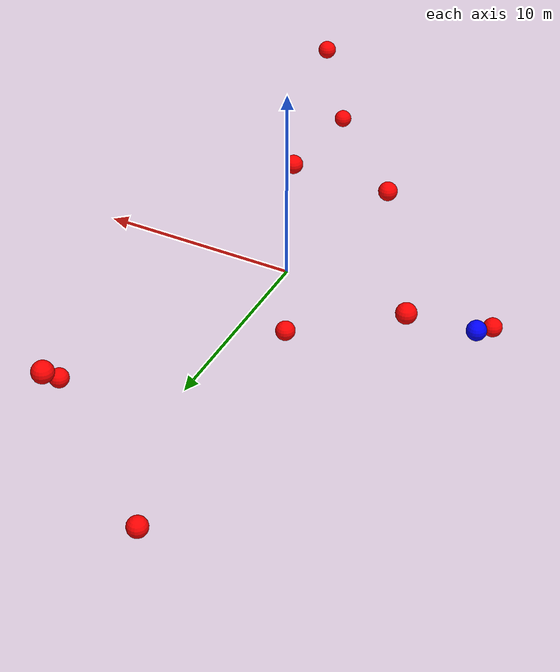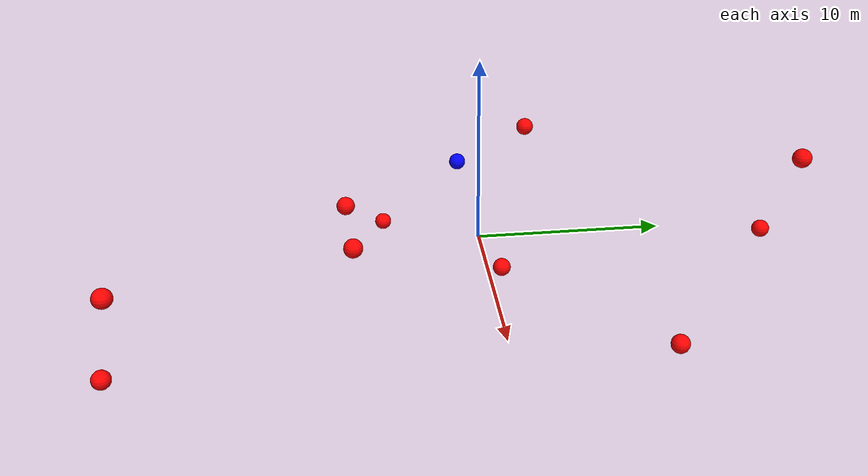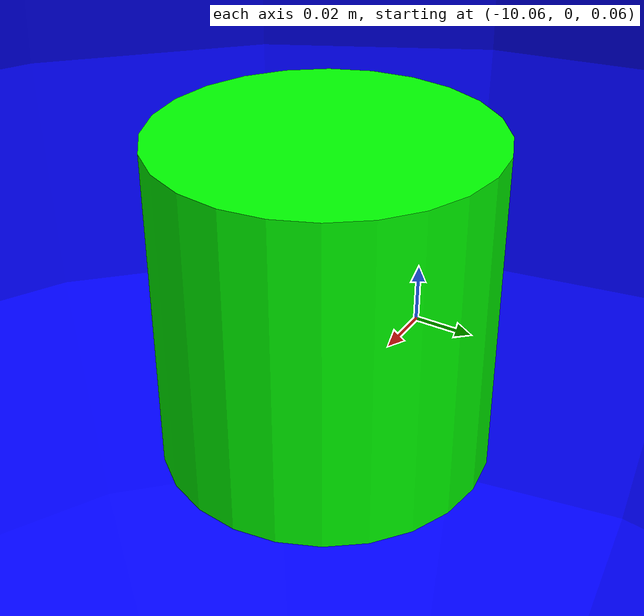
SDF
<?xml version="1.0" ?>
<sdf version="1.8">
    <world name="3d_world">
        <physics name="1ms" type="ode">
            <max_step_size>0.001</max_step_size>
            <real_time_factor>1.0</real_time_factor>
            <real_time_update_rate>1000.0</real_time_update_rate>
        </physics>
        <gravity>0 0 0</gravity>

        <plugin
            filename="gz-sim-physics-system"
            name="gz::sim::v8::systems::Physics">
        </plugin>
        <plugin
            filename="libignition-gazebo-user-commands-system.so"
            name="ignition::gazebo::systems::UserCommands">
        </plugin>
        <plugin
            filename="gz-sim-scene-broadcaster-system"
            name="gz::sim::systems::SceneBroadcaster">
        </plugin>
        <plugin
            filename="gz-sim-sensors-system"
            name="gz::sim::systems::Sensors">
            <render_engine>ogre2</render_engine>
        </plugin>

        <light type="directional" name="sun">
            <cast_shadows>true</cast_shadows>
            <pose>0 0 10 0 0 0</pose>
            <diffuse>0.8 0.8 0.8 1</diffuse>
            <specular>0.2 0.2 0.2 1</specular>
            <attenuation>
                <range>1000</range>
                <constant>0.9</constant>
                <linear>0.01</linear>
                <quadratic>0.001</quadratic>
            </attenuation>
            <direction>-0.5 0.1 -0.9</direction>
        </light>

        <!-- AGENTE -->
        <model name='agente' canonical_link='chassis'>
            <pose relative_to='world'>-10.0 0 0.0 0 0 0</pose>
            <link name='chassis'>
                <pose relative_to='__model__'>0.0 0 0.0 0 0 0</pose>
                <inertial>
                    <mass>1.14395</mass>
                    <inertia>
                        <ixx>0.095329</ixx>
                        <ixy>0</ixy>
                        <ixz>0</ixz>
                        <iyy>0.381317</iyy>
                        <iyz>0</iyz>
                        <izz>0.476646</izz>
                    </inertia>
                </inertial>
                <visual name='visual'>
                    <geometry>
                        <sphere>
                            <radius>0.5</radius>
                        </sphere>
                    </geometry>
                    <material>
                        <ambient>0.0 0.0 1.0 1</ambient>
                        <diffuse>0.0 0.0 1.0 1</diffuse>
                        <specular>0.0 0.0 1.0 1</specular>
                    </material>
                </visual>
                <collision name='collision'>
                    <geometry>
                        <sphere>
                            <radius>0.5</radius>
                        </sphere>
                    </geometry>
                </collision>
                <enable_gravity>false</enable_gravity>
            </link>

            <link name='lidar_link'>
                <pose relative_to='chassis'>0.0 0 0.1 0 0 0</pose>
                <inertial>
                    <mass>0.1</mass>
                    <inertia>
                        <ixx>0.000166667</ixx>
                        <iyy>0.000166667</iyy>
                        <izz>0.000166667</izz>
                    </inertia>
                </inertial>
                <collision name='collision'>
                    <geometry>
                        <cylinder>
                            <radius>0.05</radius>
                            <length>0.1</length>
                        </cylinder>
                    </geometry>
                </collision>
                <visual name='visual'>
                    <geometry>
                        <cylinder>
                            <radius>0.05</radius>
                            <length>0.1</length>
                        </cylinder>
                    </geometry>
                    <material>
                        <ambient>0.0 1.0 0.0 1</ambient>
                        <diffuse>0.0 1.0 0.0 1</diffuse>
                        <specular>0.0 1.0 0.0 1</specular>
                    </material>
                </visual>
                <sensor name="lidar" type="gpu_lidar">
                    <topic>scan</topic>
                    <update_rate>10</update_rate>
                    <lidar>
                        <scan>
                            <horizontal>
                                <samples>5000</samples>
                                <resolution>1</resolution>
                                <min_angle>-3.14159</min_angle>
                                <max_angle>3.14159</max_angle>
                            </horizontal>
                        </scan>
                        <range>
                            <min>0.1</min>
                            <max>10.0</max>
                            <resolution>0.01</resolution>
                        </range>
                    </lidar>
                    <visualize>true</visualize>
                    <always_on>true</always_on>
                    <update_rate>10</update_rate>
                    <pose_frame>lidar</pose_frame>
                </sensor>
                <enable_gravity>false</enable_gravity>
            </link>

            <joint name="lidar_joint" type="fixed">
                <parent>chassis</parent>
                <child>lidar_link</child>
            </joint>

            <plugin
                filename="ignition-gazebo-joint-state-publisher-system"
                name="ignition::gazebo::systems::JointStatePublisher">
            </plugin>
            <plugin
                filename="ignition-gazebo-odometry-publisher-system"
                name="ignition::gazebo::systems::OdometryPublisher">
                <dimensions>3</dimensions>
            </plugin>
            <plugin
                filename="ignition-gazebo-velocity-control-system"
                name="ignition::gazebo::systems::VelocityControl">
                <initial_linear>0.0 0 0</initial_linear>
                <initial_angular>0 0 0.0</initial_angular>
            </plugin>
            <plugin
                filename="libignition-gazebo-pose-publisher-system.so"
                name="ignition::gazebo::systems::PosePublisher">
                <topic>/agente/pose</topic>
                <frame_id>agente</frame_id>
                <update_rate>30</update_rate>
            </plugin>
        </model>

        <!-- OBSTACLE 1 -->
        <model name='obstacle_1' canonical_link='obstacle'>
            <static>false</static>
            <pose relative_to='world'>7.44 9.28 -2.72 0 0 0</pose>
            <link name='obstacle'>
                <pose relative_to='__model__'>0.0 0 0.0 0 0 0</pose>
                <visual name='visual'>
                    <geometry>
                        <sphere>
                            <radius>0.50</radius>
                        </sphere>
                    </geometry>
                    <material>
                        <ambient>1.0 0.0 0.0 1</ambient>
                        <diffuse>1.0 0.0 0.0 1</diffuse>
                        <specular>1.0 0.0 0.0 1</specular>
                    </material>
                </visual>
                <collision name='collision'>
                    <geometry>
                        <sphere>
                            <radius>0.50</radius>
                        </sphere>
                    </geometry>
                </collision>
                <enable_gravity>false</enable_gravity>
            </link>

            <plugin
                filename="ignition-gazebo-velocity-control-system"
                name="ignition::gazebo::systems::VelocityControl">
                <initial_linear>-1.30 -1.46 0.43</initial_linear>
                <initial_angular>0 0 0</initial_angular>
            </plugin>

            <plugin
                filename="ignition-gazebo-odometry-publisher-system"
                name="ignition::gazebo::systems::OdometryPublisher">
                <dimensions>3</dimensions>
            </plugin>
        </model>

        <!-- OBSTACLE 2 -->
        <model name='obstacle_2' canonical_link='obstacle'>
            <static>false</static>
            <pose relative_to='world'>6.13 -19.33 -3.33 0 0 0</pose>
            <link name='obstacle'>
                <pose relative_to='__model__'>0.0 0 0.0 0 0 0</pose>
                <visual name='visual'>
                    <geometry>
                        <sphere>
                            <radius>0.50</radius>
                        </sphere>
                    </geometry>
                    <material>
                        <ambient>1.0 0.0 0.0 1</ambient>
                        <diffuse>1.0 0.0 0.0 1</diffuse>
                        <specular>1.0 0.0 0.0 1</specular>
                    </material>
                </visual>
                <collision name='collision'>
                    <geometry>
                        <sphere>
                            <radius>0.50</radius>
                        </sphere>
                    </geometry>
                </collision>
                <enable_gravity>false</enable_gravity>
            </link>

            <plugin
                filename="ignition-gazebo-velocity-control-system"
                name="ignition::gazebo::systems::VelocityControl">
                <initial_linear>0.01 1.97 0.34</initial_linear>
                <initial_angular>0 0 0</initial_angular>
            </plugin>

            <plugin
                filename="ignition-gazebo-odometry-publisher-system"
                name="ignition::gazebo::systems::OdometryPublisher">
                <dimensions>3</dimensions>
            </plugin>
        </model>

        <!-- OBSTACLE 3 -->
        <model name='obstacle_3' canonical_link='obstacle'>
            <static>false</static>
            <pose relative_to='world'>3.11 -6.81 1.46 0 0 0</pose>
            <link name='obstacle'>
                <pose relative_to='__model__'>0.0 0 0.0 0 0 0</pose>
                <visual name='visual'>
                    <geometry>
                        <sphere>
                            <radius>0.50</radius>
                        </sphere>
                    </geometry>
                    <material>
                        <ambient>1.0 0.0 0.0 1</ambient>
                        <diffuse>1.0 0.0 0.0 1</diffuse>
                        <specular>1.0 0.0 0.0 1</specular>
                    </material>
                </visual>
                <collision name='collision'>
                    <geometry>
                        <sphere>
                            <radius>0.50</radius>
                        </sphere>
                    </geometry>
                </collision>
                <enable_gravity>false</enable_gravity>
            </link>

            <plugin
                filename="ignition-gazebo-velocity-control-system"
                name="ignition::gazebo::systems::VelocityControl">
                <initial_linear>0.42 1.08 -0.23</initial_linear>
                <initial_angular>0 0 0</initial_angular>
            </plugin>

            <plugin
                filename="ignition-gazebo-odometry-publisher-system"
                name="ignition::gazebo::systems::OdometryPublisher">
                <dimensions>3</dimensions>
            </plugin>
        </model>

        <!-- OBSTACLE 4 -->
        <model name='obstacle_4' canonical_link='obstacle'>
            <static>false</static>
            <pose relative_to='world'>-2.18 -7.11 1.21 0 0 0</pose>
            <link name='obstacle'>
                <pose relative_to='__model__'>0.0 0 0.0 0 0 0</pose>
                <visual name='visual'>
                    <geometry>
                        <sphere>
                            <radius>0.50</radius>
                        </sphere>
                    </geometry>
                    <material>
                        <ambient>1.0 0.0 0.0 1</ambient>
                        <diffuse>1.0 0.0 0.0 1</diffuse>
                        <specular>1.0 0.0 0.0 1</specular>
                    </material>
                </visual>
                <collision name='collision'>
                    <geometry>
                        <sphere>
                            <radius>0.50</radius>
                        </sphere>
                    </geometry>
                </collision>
                <enable_gravity>false</enable_gravity>
            </link>

            <plugin
                filename="ignition-gazebo-velocity-control-system"
                name="ignition::gazebo::systems::VelocityControl">
                <initial_linear>0.98 1.38 -0.24</initial_linear>
                <initial_angular>0 0 0</initial_angular>
            </plugin>

            <plugin
                filename="ignition-gazebo-odometry-publisher-system"
                name="ignition::gazebo::systems::OdometryPublisher">
                <dimensions>3</dimensions>
            </plugin>
        </model>

        <!-- OBSTACLE 5 -->
        <model name='obstacle_5' canonical_link='obstacle'>
            <static>false</static>
            <pose relative_to='world'>-0.67 1.45 -2.42 0 0 0</pose>
            <link name='obstacle'>
                <pose relative_to='__model__'>0.0 0 0.0 0 0 0</pose>
                <visual name='visual'>
                    <geometry>
                        <sphere>
                            <radius>0.50</radius>
                        </sphere>
                    </geometry>
                    <material>
                        <ambient>1.0 0.0 0.0 1</ambient>
                        <diffuse>1.0 0.0 0.0 1</diffuse>
                        <specular>1.0 0.0 0.0 1</specular>
                    </material>
                </visual>
                <collision name='collision'>
                    <geometry>
                        <sphere>
                            <radius>0.50</radius>
                        </sphere>
                    </geometry>
                </collision>
                <enable_gravity>false</enable_gravity>
            </link>

            <plugin
                filename="ignition-gazebo-velocity-control-system"
                name="ignition::gazebo::systems::VelocityControl">
                <initial_linear>-0.72 -0.50 0.83</initial_linear>
                <initial_angular>0 0 0</initial_angular>
            </plugin>

            <plugin
                filename="ignition-gazebo-odometry-publisher-system"
                name="ignition::gazebo::systems::OdometryPublisher">
                <dimensions>3</dimensions>
            </plugin>
        </model>

        <!-- OBSTACLE 6 -->
        <model name='obstacle_6' canonical_link='obstacle'>
            <static>false</static>
            <pose relative_to='world'>-7.99 3.91 3.02 0 0 0</pose>
            <link name='obstacle'>
                <pose relative_to='__model__'>0.0 0 0.0 0 0 0</pose>
                <visual name='visual'>
                    <geometry>
                        <sphere>
                            <radius>0.50</radius>
                        </sphere>
                    </geometry>
                    <material>
                        <ambient>1.0 0.0 0.0 1</ambient>
                        <diffuse>1.0 0.0 0.0 1</diffuse>
                        <specular>1.0 0.0 0.0 1</specular>
                    </material>
                </visual>
                <collision name='collision'>
                    <geometry>
                        <sphere>
                            <radius>0.50</radius>
                        </sphere>
                    </geometry>
                </collision>
                <enable_gravity>false</enable_gravity>
            </link>

            <plugin
                filename="ignition-gazebo-velocity-control-system"
                name="ignition::gazebo::systems::VelocityControl">
                <initial_linear>1.88 -0.55 -0.42</initial_linear>
                <initial_angular>0 0 0</initial_angular>
            </plugin>

            <plugin
                filename="ignition-gazebo-odometry-publisher-system"
                name="ignition::gazebo::systems::OdometryPublisher">
                <dimensions>3</dimensions>
            </plugin>
        </model>

        <!-- OBSTACLE 7 -->
        <model name='obstacle_7' canonical_link='obstacle'>
            <static>false</static>
            <pose relative_to='world'>-1.70 16.94 -1.50 0 0 0</pose>
            <link name='obstacle'>
                <pose relative_to='__model__'>0.0 0 0.0 0 0 0</pose>
                <visual name='visual'>
                    <geometry>
                        <sphere>
                            <radius>0.50</radius>
                        </sphere>
                    </geometry>
                    <material>
                        <ambient>1.0 0.0 0.0 1</ambient>
                        <diffuse>1.0 0.0 0.0 1</diffuse>
                        <specular>1.0 0.0 0.0 1</specular>
                    </material>
                </visual>
                <collision name='collision'>
                    <geometry>
                        <sphere>
                            <radius>0.50</radius>
                        </sphere>
                    </geometry>
                </collision>
                <enable_gravity>false</enable_gravity>
            </link>

            <plugin
                filename="ignition-gazebo-velocity-control-system"
                name="ignition::gazebo::systems::VelocityControl">
                <initial_linear>0.94 -1.76 0.16</initial_linear>
                <initial_angular>0 0 0</initial_angular>
            </plugin>

            <plugin
                filename="ignition-gazebo-odometry-publisher-system"
                name="ignition::gazebo::systems::OdometryPublisher">
                <dimensions>3</dimensions>
            </plugin>
        </model>

        <!-- OBSTACLE 8 -->
        <model name='obstacle_8' canonical_link='obstacle'>
            <static>false</static>
            <pose relative_to='world'>6.81 -18.36 1.68 0 0 0</pose>
            <link name='obstacle'>
                <pose relative_to='__model__'>0.0 0 0.0 0 0 0</pose>
                <visual name='visual'>
                    <geometry>
                        <sphere>
                            <radius>0.50</radius>
                        </sphere>
                    </geometry>
                    <material>
                        <ambient>1.0 0.0 0.0 1</ambient>
                        <diffuse>1.0 0.0 0.0 1</diffuse>
                        <specular>1.0 0.0 0.0 1</specular>
                    </material>
                </visual>
                <collision name='collision'>
                    <geometry>
                        <sphere>
                            <radius>0.50</radius>
                        </sphere>
                    </geometry>
                </collision>
                <enable_gravity>false</enable_gravity>
            </link>

            <plugin
                filename="ignition-gazebo-velocity-control-system"
                name="ignition::gazebo::systems::VelocityControl">
                <initial_linear>-0.19 1.98 -0.18</initial_linear>
                <initial_angular>0 0 0</initial_angular>
            </plugin>

            <plugin
                filename="ignition-gazebo-odometry-publisher-system"
                name="ignition::gazebo::systems::OdometryPublisher">
                <dimensions>3</dimensions>
            </plugin>
        </model>

        <!-- OBSTACLE 9 -->
        <model name='obstacle_9' canonical_link='obstacle'>
            <static>false</static>
            <pose relative_to='world'>2.65 16.55 4.96 0 0 0</pose>
            <link name='obstacle'>
                <pose relative_to='__model__'>0.0 0 0.0 0 0 0</pose>
                <visual name='visual'>
                    <geometry>
                        <sphere>
                            <radius>0.50</radius>
                        </sphere>
                    </geometry>
                    <material>
                        <ambient>1.0 0.0 0.0 1</ambient>
                        <diffuse>1.0 0.0 0.0 1</diffuse>
                        <specular>1.0 0.0 0.0 1</specular>
                    </material>
                </visual>
                <collision name='collision'>
                    <geometry>
                        <sphere>
                            <radius>0.50</radius>
                        </sphere>
                    </geometry>
                </collision>
                <enable_gravity>false</enable_gravity>
            </link>

            <plugin
                filename="ignition-gazebo-velocity-control-system"
                name="ignition::gazebo::systems::VelocityControl">
                <initial_linear>-0.60 -1.83 -0.55</initial_linear>
                <initial_angular>0 0 0</initial_angular>
            </plugin>

            <plugin
                filename="ignition-gazebo-odometry-publisher-system"
                name="ignition::gazebo::systems::OdometryPublisher">
                <dimensions>3</dimensions>
            </plugin>
        </model>

        <!-- OBSTACLE 10 -->
        <model name='obstacle_10' canonical_link='obstacle'>
            <static>false</static>
            <pose relative_to='world'>-9.20 -4.86 -3.55 0 0 0</pose>
            <link name='obstacle'>
                <pose relative_to='__model__'>0.0 0 0.0 0 0 0</pose>
                <visual name='visual'>
                    <geometry>
                        <sphere>
                            <radius>0.50</radius>
                        </sphere>
                    </geometry>
                    <material>
                        <ambient>1.0 0.0 0.0 1</ambient>
                        <diffuse>1.0 0.0 0.0 1</diffuse>
                        <specular>1.0 0.0 0.0 1</specular>
                    </material>
                </visual>
                <collision name='collision'>
                    <geometry>
                        <sphere>
                            <radius>0.50</radius>
                        </sphere>
                    </geometry>
                </collision>
                <enable_gravity>false</enable_gravity>
            </link>

            <plugin
                filename="ignition-gazebo-velocity-control-system"
                name="ignition::gazebo::systems::VelocityControl">
                <initial_linear>1.44 1.12 0.82</initial_linear>
                <initial_angular>0 0 0</initial_angular>
            </plugin>

            <plugin
                filename="ignition-gazebo-odometry-publisher-system"
                name="ignition::gazebo::systems::OdometryPublisher">
                <dimensions>3</dimensions>
            </plugin>
        </model>

    </world>
</sdf>
